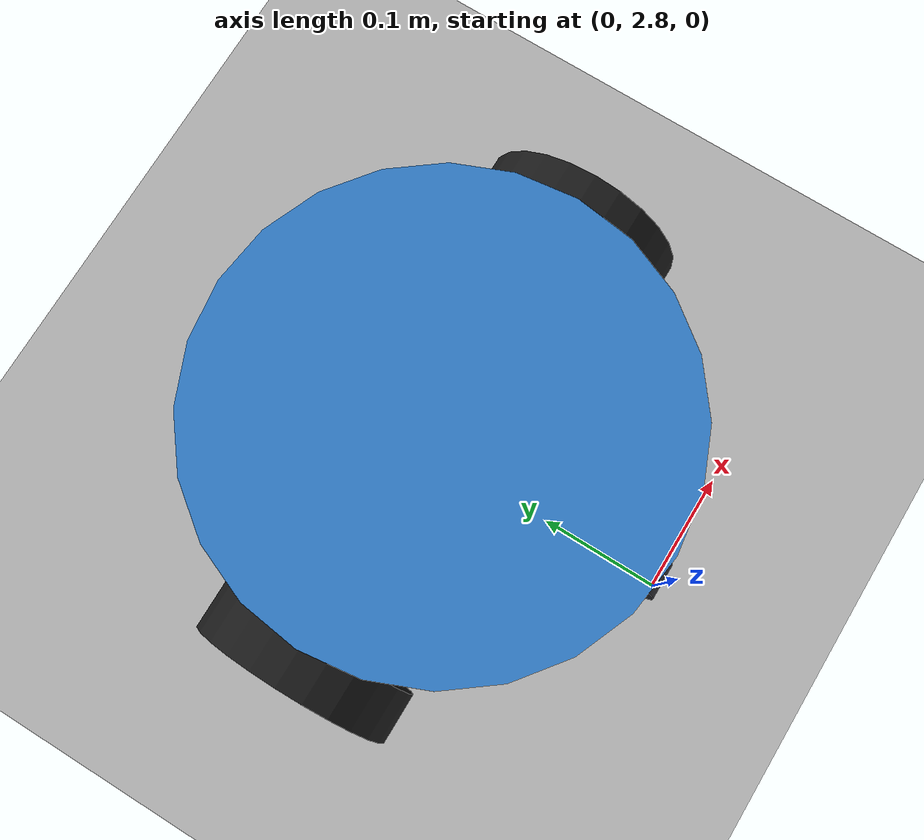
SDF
<sdf version="1.6">
 <world name="office">
  <model name="ceiling">
   <pose>-2.9699999999999998
        11.25
        3.0
        0
        3.141592653589793
        0</pose>
   <static>true</static>
   <link name="link">
    <visual name="visual">
     <geometry><plane><normal>0 0 1</normal><size>49.5 22.5</size></plane></geometry>
     <material>
      <script>
       <uri>file://media/materials/scripts/</uri>
       <uri>file://media/materials/textures/</uri>
       <name>ServiceSim/Ceiling</name>
      </script>
     </material>
    </visual>
   </link>
  </model>
  <model name="floor">
   <pose>-2.9699999999999998
        11.25
        -0.001
        0
        0
        0</pose>
   <static>true</static>
   <link name="link">
    <visual name="visual">
     <geometry><plane><normal>0 0 1</normal><size>49.5 22.5</size></plane></geometry>
     <material>
      <script>
       <uri>file://media/materials/scripts/</uri>
       <uri>file://media/materials/textures/</uri>
       <name>ServiceSim/Hallway</name>
      </script>
     </material>
    </visual>
    <collision name="collision">
     <geometry><plane><normal>0 0 1</normal><size>49.5 22.5</size></plane></geometry>
     <surface><friction><ode><mu>1</mu><mu2>1</mu2></ode></friction></surface>
    </collision>
   </link>
  </model>
  <include><pose>0 3 0.12 0 0 -1.5708</pose><uri>model://robot</uri></include>
 </world>
</sdf>
